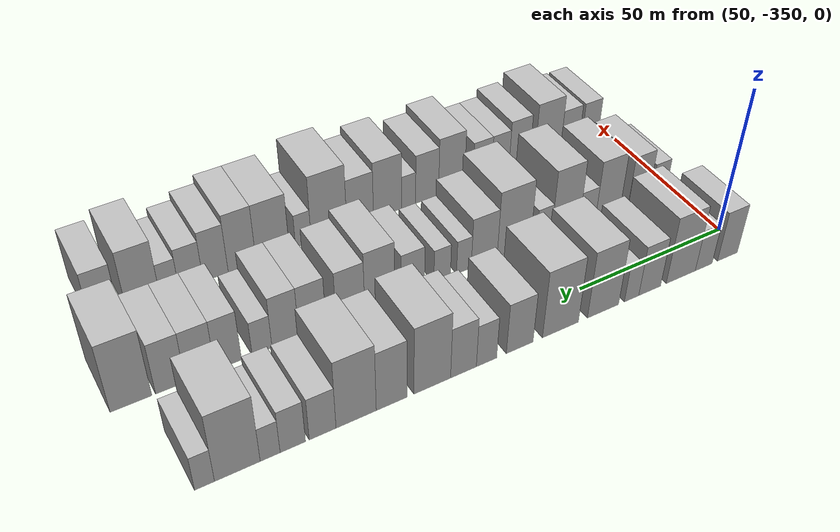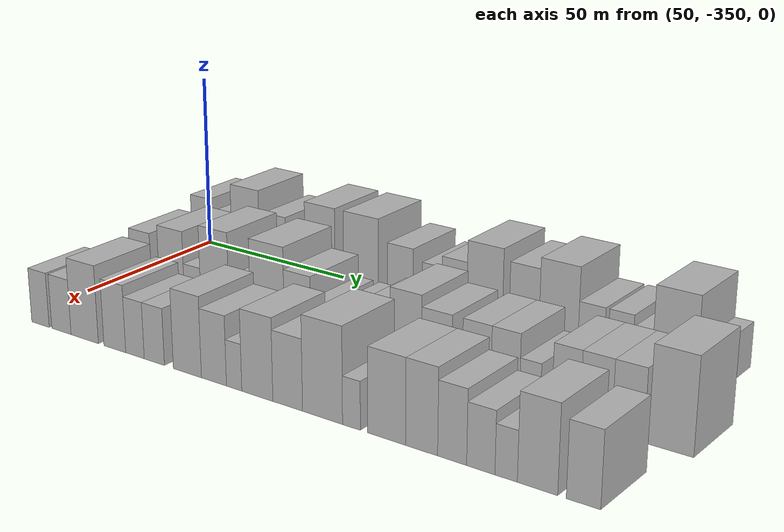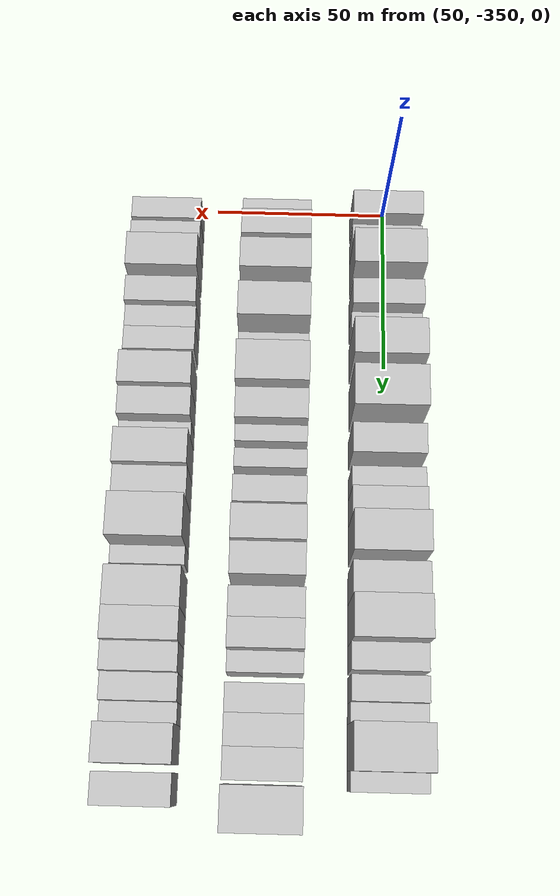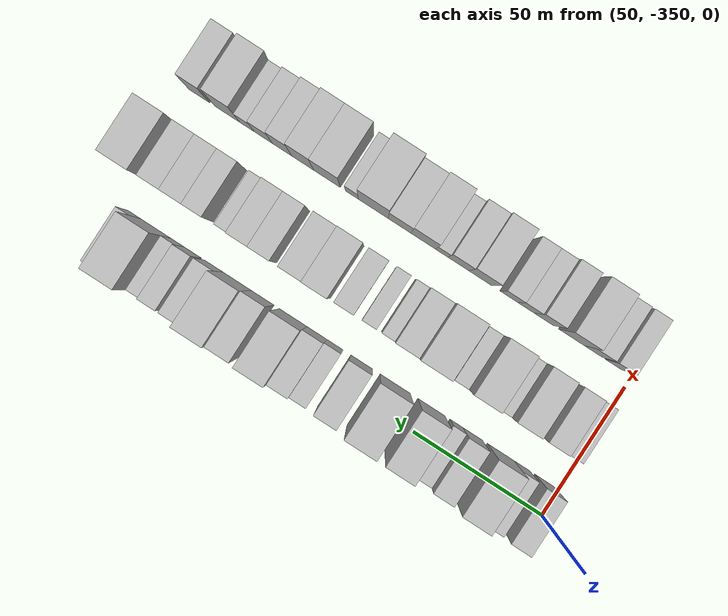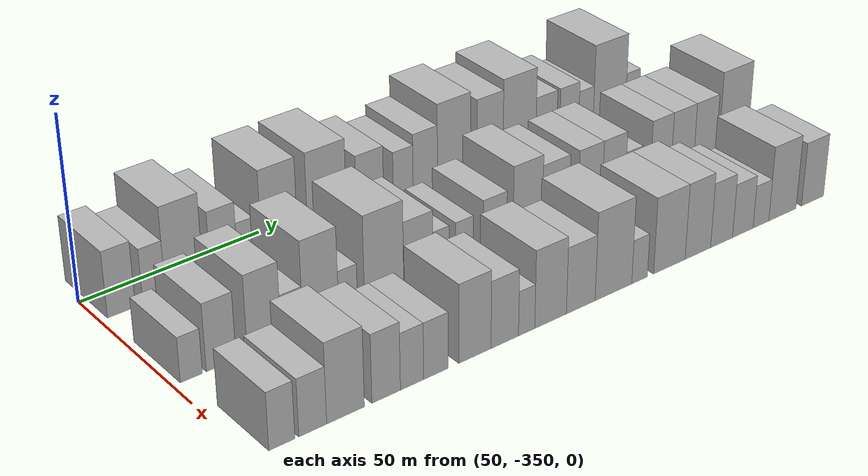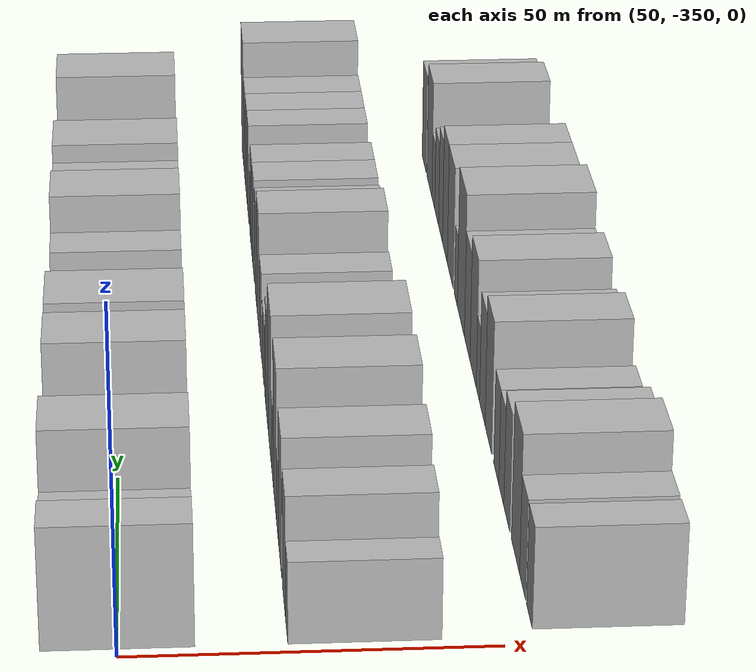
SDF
<sdf version="1.6">
 <world name="default">
  <model name="building_1">
   <static>1</static>
   <pose>50.0000 -344.3174 0 0.000000 0.000000 0.000000</pose>
   <link name="link">
    <pose>0 0 9.00 0 0 0</pose>
    <collision name="collision"><geometry><box><size>20.0000 7.3652 18.0000</size></box></geometry></collision>
    <visual name="visual">
     <cast_shadows>0</cast_shadows>
     <geometry><box><size>20.0000 7.3652 18.0000</size></box></geometry>
     <material>
      <script>
       <uri>model://HANNAS_wall/materials/scripts</uri>
       <uri>model://HANNAS_wall/materials/textures</uri>
       <name>vrc/HANNAS_wall</name>
      </script>
     </material>
    </visual>
   </link>
  </model>
  <model name="building_2">
   <static>1</static>
   <pose>50.0000 -335.5791 0 0.000000 0.000000 0.000000</pose>
   <link name="link">
    <pose>0 0 7.50 0 0 0</pose>
    <collision name="collision"><geometry><box><size>20.0000 6.1115 15.0000</size></box></geometry></collision>
    <visual name="visual">
     <cast_shadows>0</cast_shadows>
     <geometry><box><size>20.0000 6.1115 15.0000</size></box></geometry>
     <material>
      <script>
       <uri>model://HANNAS_wall/materials/scripts</uri>
       <uri>model://HANNAS_wall/materials/textures</uri>
       <name>vrc/HANNAS_wall</name>
      </script>
     </material>
    </visual>
   </link>
  </model>
  <model name="building_3">
   <static>1</static>
   <pose>50.0000 -327.3274 0 0.000000 0.000000 0.000000</pose>
   <link name="link">
    <pose>0 0 12.00 0 0 0</pose>
    <collision name="collision"><geometry><box><size>20.0000 10.3918 24.0000</size></box></geometry></collision>
    <visual name="visual">
     <cast_shadows>0</cast_shadows>
     <geometry><box><size>20.0000 10.3918 24.0000</size></box></geometry>
     <material>
      <script>
       <uri>model://HANNAS_wall/materials/scripts</uri>
       <uri>model://HANNAS_wall/materials/textures</uri>
       <name>vrc/HANNAS_wall</name>
      </script>
     </material>
    </visual>
   </link>
  </model>
  <model name="building_4">
   <static>1</static>
   <pose>50.0000 -316.3229 0 0.000000 0.000000 0.000000</pose>
   <link name="link">
    <pose>0 0 9.00 0 0 0</pose>
    <collision name="collision"><geometry><box><size>20.0000 7.6172 18.0000</size></box></geometry></collision>
    <visual name="visual">
     <cast_shadows>0</cast_shadows>
     <geometry><box><size>20.0000 7.6172 18.0000</size></box></geometry>
     <material>
      <script>
       <uri>model://HANNAS_wall/materials/scripts</uri>
       <uri>model://HANNAS_wall/materials/textures</uri>
       <name>vrc/HANNAS_wall</name>
      </script>
     </material>
    </visual>
   </link>
  </model>
  <model name="building_5">
   <static>1</static>
   <pose>50.0000 -310.0552 0 0.000000 0.000000 0.000000</pose>
   <link name="link">
    <pose>0 0 6.00 0 0 0</pose>
    <collision name="collision"><geometry><box><size>20.0000 4.9181 12.0000</size></box></geometry></collision>
    <visual name="visual">
     <cast_shadows>0</cast_shadows>
     <geometry><box><size>20.0000 4.9181 12.0000</size></box></geometry>
     <material>
      <script>
       <uri>model://HANNAS_wall/materials/scripts</uri>
       <uri>model://HANNAS_wall/materials/textures</uri>
       <name>vrc/HANNAS_wall</name>
      </script>
     </material>
    </visual>
   </link>
  </model>
  <model name="building_6">
   <static>1</static>
   <pose>50.0000 -300.3728 0 0.000000 0.000000 0.000000</pose>
   <link name="link">
    <pose>0 0 12.00 0 0 0</pose>
    <collision name="collision"><geometry><box><size>20.0000 10.4468 24.0000</size></box></geometry></collision>
    <visual name="visual">
     <cast_shadows>0</cast_shadows>
     <geometry><box><size>20.0000 10.4468 24.0000</size></box></geometry>
     <material>
      <script>
       <uri>model://HANNAS_wall/materials/scripts</uri>
       <uri>model://HANNAS_wall/materials/textures</uri>
       <name>vrc/HANNAS_wall</name>
      </script>
     </material>
    </visual>
   </link>
  </model>
  <model name="building_7">
   <static>1</static>
   <pose>50.0000 -286.3147 0 0.000000 0.000000 0.000000</pose>
   <link name="link">
    <pose>0 0 12.00 0 0 0</pose>
    <collision name="collision"><geometry><box><size>20.0000 11.6693 24.0000</size></box></geometry></collision>
    <visual name="visual">
     <cast_shadows>0</cast_shadows>
     <geometry><box><size>20.0000 11.6693 24.0000</size></box></geometry>
     <material>
      <script>
       <uri>model://HANNAS_wall/materials/scripts</uri>
       <uri>model://HANNAS_wall/materials/textures</uri>
       <name>vrc/HANNAS_wall</name>
      </script>
     </material>
    </visual>
   </link>
  </model>
  <model name="building_8">
   <static>1</static>
   <pose>50.0000 -273.2811 0 0.000000 0.000000 0.000000</pose>
   <link name="link">
    <pose>0 0 9.00 0 0 0</pose>
    <collision name="collision"><geometry><box><size>20.0000 8.3979 18.0000</size></box></geometry></collision>
    <visual name="visual">
     <cast_shadows>0</cast_shadows>
     <geometry><box><size>20.0000 8.3979 18.0000</size></box></geometry>
     <material>
      <script>
       <uri>model://HANNAS_wall/materials/scripts</uri>
       <uri>model://HANNAS_wall/materials/textures</uri>
       <name>vrc/HANNAS_wall</name>
      </script>
     </material>
    </visual>
   </link>
  </model>
  <model name="building_9">
   <static>1</static>
   <pose>50.0000 -262.9646 0 0.000000 0.000000 0.000000</pose>
   <link name="link">
    <pose>0 0 7.50 0 0 0</pose>
    <collision name="collision"><geometry><box><size>20.0000 6.2351 15.0000</size></box></geometry></collision>
    <visual name="visual">
     <cast_shadows>0</cast_shadows>
     <geometry><box><size>20.0000 6.2351 15.0000</size></box></geometry>
     <material>
      <script>
       <uri>model://HANNAS_wall/materials/scripts</uri>
       <uri>model://HANNAS_wall/materials/textures</uri>
       <name>vrc/HANNAS_wall</name>
      </script>
     </material>
    </visual>
   </link>
  </model>
  <model name="building_10">
   <static>1</static>
   <pose>50.0000 -255.9643 0 0.000000 0.000000 0.000000</pose>
   <link name="link">
    <pose>0 0 9.00 0 0 0</pose>
    <collision name="collision"><geometry><box><size>20.0000 7.7656 18.0000</size></box></geometry></collision>
    <visual name="visual">
     <cast_shadows>0</cast_shadows>
     <geometry><box><size>20.0000 7.7656 18.0000</size></box></geometry>
     <material>
      <script>
       <uri>model://HANNAS_wall/materials/scripts</uri>
       <uri>model://HANNAS_wall/materials/textures</uri>
       <name>vrc/HANNAS_wall</name>
      </script>
     </material>
    </visual>
   </link>
  </model>
  <model name="building_11">
   <static>1</static>
   <pose>50.0000 -246.6785 0 0.000000 0.000000 0.000000</pose>
   <link name="link">
    <pose>0 0 12.00 0 0 0</pose>
    <collision name="collision"><geometry><box><size>20.0000 10.8059 24.0000</size></box></geometry></collision>
    <visual name="visual">
     <cast_shadows>0</cast_shadows>
     <geometry><box><size>20.0000 10.8059 24.0000</size></box></geometry>
     <material>
      <script>
       <uri>model://HANNAS_wall/materials/scripts</uri>
       <uri>model://HANNAS_wall/materials/textures</uri>
       <name>vrc/HANNAS_wall</name>
      </script>
     </material>
    </visual>
   </link>
  </model>
  <model name="building_12">
   <static>1</static>
   <pose>50.0000 -234.8860 0 0.000000 0.000000 0.000000</pose>
   <link name="link">
    <pose>0 0 10.50 0 0 0</pose>
    <collision name="collision"><geometry><box><size>20.0000 8.7792 21.0000</size></box></geometry></collision>
    <visual name="visual">
     <cast_shadows>0</cast_shadows>
     <geometry><box><size>20.0000 8.7792 21.0000</size></box></geometry>
     <material>
      <script>
       <uri>model://HANNAS_wall/materials/scripts</uri>
       <uri>model://HANNAS_wall/materials/textures</uri>
       <name>vrc/HANNAS_wall</name>
      </script>
     </material>
    </visual>
   </link>
  </model>
  <model name="building_13">
   <static>1</static>
   <pose>50.0000 -224.8944 0 0.000000 0.000000 0.000000</pose>
   <link name="link">
    <pose>0 0 12.00 0 0 0</pose>
    <collision name="collision"><geometry><box><size>20.0000 11.2038 24.0000</size></box></geometry></collision>
    <visual name="visual">
     <cast_shadows>0</cast_shadows>
     <geometry><box><size>20.0000 11.2038 24.0000</size></box></geometry>
     <material>
      <script>
       <uri>model://HANNAS_wall/materials/scripts</uri>
       <uri>model://HANNAS_wall/materials/textures</uri>
       <name>vrc/HANNAS_wall</name>
      </script>
     </material>
    </visual>
   </link>
  </model>
  <model name="building_14">
   <static>1</static>
   <pose>50.0000 -215.6477 0 0.000000 0.000000 0.000000</pose>
   <link name="link">
    <pose>0 0 7.50 0 0 0</pose>
    <collision name="collision"><geometry><box><size>20.0000 7.2896 15.0000</size></box></geometry></collision>
    <visual name="visual">
     <cast_shadows>0</cast_shadows>
     <geometry><box><size>20.0000 7.2896 15.0000</size></box></geometry>
     <material>
      <script>
       <uri>model://HANNAS_wall/materials/scripts</uri>
       <uri>model://HANNAS_wall/materials/textures</uri>
       <name>vrc/HANNAS_wall</name>
      </script>
     </material>
    </visual>
   </link>
  </model>
  <model name="building_15">
   <static>1</static>
   <pose>50.0000 -207.6275 0 0.000000 0.000000 0.000000</pose>
   <link name="link">
    <pose>0 0 7.50 0 0 0</pose>
    <collision name="collision"><geometry><box><size>20.0000 6.7509 15.0000</size></box></geometry></collision>
    <visual name="visual">
     <cast_shadows>0</cast_shadows>
     <geometry><box><size>20.0000 6.7509 15.0000</size></box></geometry>
     <material>
      <script>
       <uri>model://HANNAS_wall/materials/scripts</uri>
       <uri>model://HANNAS_wall/materials/textures</uri>
       <name>vrc/HANNAS_wall</name>
      </script>
     </material>
    </visual>
   </link>
  </model>
  <model name="building_16">
   <static>1</static>
   <pose>50.0000 -201.6469 0 0.000000 0.000000 0.000000</pose>
   <link name="link">
    <pose>0 0 6.00 0 0 0</pose>
    <collision name="collision"><geometry><box><size>20.0000 5.2103 12.0000</size></box></geometry></collision>
    <visual name="visual">
     <cast_shadows>0</cast_shadows>
     <geometry><box><size>20.0000 5.2103 12.0000</size></box></geometry>
     <material>
      <script>
       <uri>model://HANNAS_wall/materials/scripts</uri>
       <uri>model://HANNAS_wall/materials/textures</uri>
       <name>vrc/HANNAS_wall</name>
      </script>
     </material>
    </visual>
   </link>
  </model>
  <model name="building_17">
   <static>1</static>
   <pose>50.0000 -193.1836 0 0.000000 0.000000 0.000000</pose>
   <link name="link">
    <pose>0 0 12.00 0 0 0</pose>
    <collision name="collision"><geometry><box><size>20.0000 11.7162 24.0000</size></box></geometry></collision>
    <visual name="visual">
     <cast_shadows>0</cast_shadows>
     <geometry><box><size>20.0000 11.7162 24.0000</size></box></geometry>
     <material>
      <script>
       <uri>model://HANNAS_wall/materials/scripts</uri>
       <uri>model://HANNAS_wall/materials/textures</uri>
       <name>vrc/HANNAS_wall</name>
      </script>
     </material>
    </visual>
   </link>
  </model>
  <model name="building_18">
   <static>1</static>
   <pose>50.0000 -184.8197 0 0.000000 0.000000 0.000000</pose>
   <link name="link">
    <pose>0 0 6.00 0 0 0</pose>
    <collision name="collision"><geometry><box><size>20.0000 5.0117 12.0000</size></box></geometry></collision>
    <visual name="visual">
     <cast_shadows>0</cast_shadows>
     <geometry><box><size>20.0000 5.0117 12.0000</size></box></geometry>
     <material>
      <script>
       <uri>model://HANNAS_wall/materials/scripts</uri>
       <uri>model://HANNAS_wall/materials/textures</uri>
       <name>vrc/HANNAS_wall</name>
      </script>
     </material>
    </visual>
   </link>
  </model>
  <model name="building_78">
   <static>1</static>
   <pose>82.0000 -345.1561 0 0.000000 0.000000 0.000000</pose>
   <link name="link">
    <pose>0 0 6.00 0 0 0</pose>
    <collision name="collision"><geometry><box><size>20.0000 5.6878 12.0000</size></box></geometry></collision>
    <visual name="visual">
     <cast_shadows>0</cast_shadows>
     <geometry><box><size>20.0000 5.6878 12.0000</size></box></geometry>
     <material>
      <script>
       <uri>model://HANNAS_wall/materials/scripts</uri>
       <uri>model://HANNAS_wall/materials/textures</uri>
       <name>vrc/HANNAS_wall</name>
      </script>
     </material>
    </visual>
   </link>
  </model>
  <model name="building_79">
   <static>1</static>
   <pose>82.0000 -337.4276 0 0.000000 0.000000 0.000000</pose>
   <link name="link">
    <pose>0 0 9.00 0 0 0</pose>
    <collision name="collision"><geometry><box><size>20.0000 7.7693 18.0000</size></box></geometry></collision>
    <visual name="visual">
     <cast_shadows>0</cast_shadows>
     <geometry><box><size>20.0000 7.7693 18.0000</size></box></geometry>
     <material>
      <script>
       <uri>model://HANNAS_wall/materials/scripts</uri>
       <uri>model://HANNAS_wall/materials/textures</uri>
       <name>vrc/HANNAS_wall</name>
      </script>
     </material>
    </visual>
   </link>
  </model>
  <model name="building_80">
   <static>1</static>
   <pose>82.0000 -326.0018 0 0.000000 0.000000 0.000000</pose>
   <link name="link">
    <pose>0 0 10.50 0 0 0</pose>
    <collision name="collision"><geometry><box><size>20.0000 9.0823 21.0000</size></box></geometry></collision>
    <visual name="visual">
     <cast_shadows>0</cast_shadows>
     <geometry><box><size>20.0000 9.0823 21.0000</size></box></geometry>
     <material>
      <script>
       <uri>model://HANNAS_wall/materials/scripts</uri>
       <uri>model://HANNAS_wall/materials/textures</uri>
       <name>vrc/HANNAS_wall</name>
      </script>
     </material>
    </visual>
   </link>
  </model>
  <model name="building_81">
   <static>1</static>
   <pose>82.0000 -318.4719 0 0.000000 0.000000 0.000000</pose>
   <link name="link">
    <pose>0 0 6.00 0 0 0</pose>
    <collision name="collision"><geometry><box><size>20.0000 5.9774 12.0000</size></box></geometry></collision>
    <visual name="visual">
     <cast_shadows>0</cast_shadows>
     <geometry><box><size>20.0000 5.9774 12.0000</size></box></geometry>
     <material>
      <script>
       <uri>model://HANNAS_wall/materials/scripts</uri>
       <uri>model://HANNAS_wall/materials/textures</uri>
       <name>vrc/HANNAS_wall</name>
      </script>
     </material>
    </visual>
   </link>
  </model>
  <model name="building_82">
   <static>1</static>
   <pose>82.0000 -310.5038 0 0.000000 0.000000 0.000000</pose>
   <link name="link">
    <pose>0 0 12.00 0 0 0</pose>
    <collision name="collision"><geometry><box><size>20.0000 9.9589 24.0000</size></box></geometry></collision>
    <visual name="visual">
     <cast_shadows>0</cast_shadows>
     <geometry><box><size>20.0000 9.9589 24.0000</size></box></geometry>
     <material>
      <script>
       <uri>model://HANNAS_wall/materials/scripts</uri>
       <uri>model://HANNAS_wall/materials/textures</uri>
       <name>vrc/HANNAS_wall</name>
      </script>
     </material>
    </visual>
   </link>
  </model>
  <model name="building_83">
   <static>1</static>
   <pose>82.0000 -302.8503 0 0.000000 0.000000 0.000000</pose>
   <link name="link">
    <pose>0 0 6.00 0 0 0</pose>
    <collision name="collision"><geometry><box><size>20.0000 5.3480 12.0000</size></box></geometry></collision>
    <visual name="visual">
     <cast_shadows>0</cast_shadows>
     <geometry><box><size>20.0000 5.3480 12.0000</size></box></geometry>
     <material>
      <script>
       <uri>model://HANNAS_wall/materials/scripts</uri>
       <uri>model://HANNAS_wall/materials/textures</uri>
       <name>vrc/HANNAS_wall</name>
      </script>
     </material>
    </visual>
   </link>
  </model>
  <model name="building_84">
   <static>1</static>
   <pose>82.0000 -292.4878 0 0.000000 0.000000 0.000000</pose>
   <link name="link">
    <pose>0 0 12.00 0 0 0</pose>
    <collision name="collision"><geometry><box><size>20.0000 11.3769 24.0000</size></box></geometry></collision>
    <visual name="visual">
     <cast_shadows>0</cast_shadows>
     <geometry><box><size>20.0000 11.3769 24.0000</size></box></geometry>
     <material>
      <script>
       <uri>model://HANNAS_wall/materials/scripts</uri>
       <uri>model://HANNAS_wall/materials/textures</uri>
       <name>vrc/HANNAS_wall</name>
      </script>
     </material>
    </visual>
   </link>
  </model>
  <model name="building_85">
   <static>1</static>
   <pose>82.0000 -282.4565 0 0.000000 0.000000 0.000000</pose>
   <link name="link">
    <pose>0 0 9.00 0 0 0</pose>
    <collision name="collision"><geometry><box><size>20.0000 8.6857 18.0000</size></box></geometry></collision>
    <visual name="visual">
     <cast_shadows>0</cast_shadows>
     <geometry><box><size>20.0000 8.6857 18.0000</size></box></geometry>
     <material>
      <script>
       <uri>model://HANNAS_wall/materials/scripts</uri>
       <uri>model://HANNAS_wall/materials/textures</uri>
       <name>vrc/HANNAS_wall</name>
      </script>
     </material>
    </visual>
   </link>
  </model>
  <model name="building_86">
   <static>1</static>
   <pose>82.0000 -275.6900 0 0.000000 0.000000 0.000000</pose>
   <link name="link">
    <pose>0 0 6.00 0 0 0</pose>
    <collision name="collision"><geometry><box><size>20.0000 4.8474 12.0000</size></box></geometry></collision>
    <visual name="visual">
     <cast_shadows>0</cast_shadows>
     <geometry><box><size>20.0000 4.8474 12.0000</size></box></geometry>
     <material>
      <script>
       <uri>model://HANNAS_wall/materials/scripts</uri>
       <uri>model://HANNAS_wall/materials/textures</uri>
       <name>vrc/HANNAS_wall</name>
      </script>
     </material>
    </visual>
   </link>
  </model>
  <model name="building_87">
   <static>1</static>
   <pose>82.0000 -268.5677 0 0.000000 0.000000 0.000000</pose>
   <link name="link">
    <pose>0 0 6.00 0 0 0</pose>
    <collision name="collision"><geometry><box><size>20.0000 5.3970 12.0000</size></box></geometry></collision>
    <visual name="visual">
     <cast_shadows>0</cast_shadows>
     <geometry><box><size>20.0000 5.3970 12.0000</size></box></geometry>
     <material>
      <script>
       <uri>model://HANNAS_wall/materials/scripts</uri>
       <uri>model://HANNAS_wall/materials/textures</uri>
       <name>vrc/HANNAS_wall</name>
      </script>
     </material>
    </visual>
   </link>
  </model>
  <model name="building_88">
   <static>1</static>
   <pose>82.0000 -259.1674 0 0.000000 0.000000 0.000000</pose>
   <link name="link">
    <pose>0 0 7.50 0 0 0</pose>
    <collision name="collision"><geometry><box><size>20.0000 7.4036 15.0000</size></box></geometry></collision>
    <visual name="visual">
     <cast_shadows>0</cast_shadows>
     <geometry><box><size>20.0000 7.4036 15.0000</size></box></geometry>
     <material>
      <script>
       <uri>model://HANNAS_wall/materials/scripts</uri>
       <uri>model://HANNAS_wall/materials/textures</uri>
       <name>vrc/HANNAS_wall</name>
      </script>
     </material>
    </visual>
   </link>
  </model>
  <model name="building_89">
   <static>1</static>
   <pose>82.0000 -248.8007 0 0.000000 0.000000 0.000000</pose>
   <link name="link">
    <pose>0 0 10.50 0 0 0</pose>
    <collision name="collision"><geometry><box><size>20.0000 9.3297 21.0000</size></box></geometry></collision>
    <visual name="visual">
     <cast_shadows>0</cast_shadows>
     <geometry><box><size>20.0000 9.3297 21.0000</size></box></geometry>
     <material>
      <script>
       <uri>model://HANNAS_wall/materials/scripts</uri>
       <uri>model://HANNAS_wall/materials/textures</uri>
       <name>vrc/HANNAS_wall</name>
      </script>
     </material>
    </visual>
   </link>
  </model>
  <model name="building_90">
   <static>1</static>
   <pose>82.0000 -239.7735 0 0.000000 0.000000 0.000000</pose>
   <link name="link">
    <pose>0 0 9.00 0 0 0</pose>
    <collision name="collision"><geometry><box><size>20.0000 8.7248 18.0000</size></box></geometry></collision>
    <visual name="visual">
     <cast_shadows>0</cast_shadows>
     <geometry><box><size>20.0000 8.7248 18.0000</size></box></geometry>
     <material>
      <script>
       <uri>model://HANNAS_wall/materials/scripts</uri>
       <uri>model://HANNAS_wall/materials/textures</uri>
       <name>vrc/HANNAS_wall</name>
      </script>
     </material>
    </visual>
   </link>
  </model>
  <model name="building_91">
   <static>1</static>
   <pose>82.0000 -228.4020 0 0.000000 0.000000 0.000000</pose>
   <link name="link">
    <pose>0 0 9.00 0 0 0</pose>
    <collision name="collision"><geometry><box><size>20.0000 8.0181 18.0000</size></box></geometry></collision>
    <visual name="visual">
     <cast_shadows>0</cast_shadows>
     <geometry><box><size>20.0000 8.0181 18.0000</size></box></geometry>
     <material>
      <script>
       <uri>model://HANNAS_wall/materials/scripts</uri>
       <uri>model://HANNAS_wall/materials/textures</uri>
       <name>vrc/HANNAS_wall</name>
      </script>
     </material>
    </visual>
   </link>
  </model>
  <model name="building_92">
   <static>1</static>
   <pose>82.0000 -220.4900 0 0.000000 0.000000 0.000000</pose>
   <link name="link">
    <pose>0 0 9.00 0 0 0</pose>
    <collision name="collision"><geometry><box><size>20.0000 7.8060 18.0000</size></box></geometry></collision>
    <visual name="visual">
     <cast_shadows>0</cast_shadows>
     <geometry><box><size>20.0000 7.8060 18.0000</size></box></geometry>
     <material>
      <script>
       <uri>model://HANNAS_wall/materials/scripts</uri>
       <uri>model://HANNAS_wall/materials/textures</uri>
       <name>vrc/HANNAS_wall</name>
      </script>
     </material>
    </visual>
   </link>
  </model>
  <model name="building_93">
   <static>1</static>
   <pose>82.0000 -213.7571 0 0.000000 0.000000 0.000000</pose>
   <link name="link">
    <pose>0 0 6.00 0 0 0</pose>
    <collision name="collision"><geometry><box><size>20.0000 5.6598 12.0000</size></box></geometry></collision>
    <visual name="visual">
     <cast_shadows>0</cast_shadows>
     <geometry><box><size>20.0000 5.6598 12.0000</size></box></geometry>
     <material>
      <script>
       <uri>model://HANNAS_wall/materials/scripts</uri>
       <uri>model://HANNAS_wall/materials/textures</uri>
       <name>vrc/HANNAS_wall</name>
      </script>
     </material>
    </visual>
   </link>
  </model>
  <model name="building_94">
   <static>1</static>
   <pose>82.0000 -204.2520 0 0.000000 0.000000 0.000000</pose>
   <link name="link">
    <pose>0 0 9.00 0 0 0</pose>
    <collision name="collision"><geometry><box><size>20.0000 7.3502 18.0000</size></box></geometry></collision>
    <visual name="visual">
     <cast_shadows>0</cast_shadows>
     <geometry><box><size>20.0000 7.3502 18.0000</size></box></geometry>
     <material>
      <script>
       <uri>model://HANNAS_wall/materials/scripts</uri>
       <uri>model://HANNAS_wall/materials/textures</uri>
       <name>vrc/HANNAS_wall</name>
      </script>
     </material>
    </visual>
   </link>
  </model>
  <model name="building_95">
   <static>1</static>
   <pose>82.0000 -196.5220 0 0.000000 0.000000 0.000000</pose>
   <link name="link">
    <pose>0 0 9.00 0 0 0</pose>
    <collision name="collision"><geometry><box><size>20.0000 8.1099 18.0000</size></box></geometry></collision>
    <visual name="visual">
     <cast_shadows>0</cast_shadows>
     <geometry><box><size>20.0000 8.1099 18.0000</size></box></geometry>
     <material>
      <script>
       <uri>model://HANNAS_wall/materials/scripts</uri>
       <uri>model://HANNAS_wall/materials/textures</uri>
       <name>vrc/HANNAS_wall</name>
      </script>
     </material>
    </visual>
   </link>
  </model>
  <model name="building_96">
   <static>1</static>
   <pose>82.0000 -188.4568 0 0.000000 0.000000 0.000000</pose>
   <link name="link">
    <pose>0 0 9.00 0 0 0</pose>
    <collision name="collision"><geometry><box><size>20.0000 8.0205 18.0000</size></box></geometry></collision>
    <visual name="visual">
     <cast_shadows>0</cast_shadows>
     <geometry><box><size>20.0000 8.0205 18.0000</size></box></geometry>
     <material>
      <script>
       <uri>model://HANNAS_wall/materials/scripts</uri>
       <uri>model://HANNAS_wall/materials/textures</uri>
       <name>vrc/HANNAS_wall</name>
      </script>
     </material>
    </visual>
   </link>
  </model>
  <model name="building_97">
   <static>1</static>
   <pose>82.0000 -177.9880 0 0.000000 0.000000 0.000000</pose>
   <link name="link">
    <pose>0 0 12.00 0 0 0</pose>
    <collision name="collision"><geometry><box><size>20.0000 10.9173 24.0000</size></box></geometry></collision>
    <visual name="visual">
     <cast_shadows>0</cast_shadows>
     <geometry><box><size>20.0000 10.9173 24.0000</size></box></geometry>
     <material>
      <script>
       <uri>model://HANNAS_wall/materials/scripts</uri>
       <uri>model://HANNAS_wall/materials/textures</uri>
       <name>vrc/HANNAS_wall</name>
      </script>
     </material>
    </visual>
   </link>
  </model>
  <model name="building_154">
   <static>1</static>
   <pose>114.0000 -342.7129 0 0.000000 0.000000 0.000000</pose>
   <link name="link">
    <pose>0 0 7.50 0 0 0</pose>
    <collision name="collision"><geometry><box><size>20.0000 6.5742 15.0000</size></box></geometry></collision>
    <visual name="visual">
     <cast_shadows>0</cast_shadows>
     <geometry><box><size>20.0000 6.5742 15.0000</size></box></geometry>
     <material>
      <script>
       <uri>model://HANNAS_wall/materials/scripts</uri>
       <uri>model://HANNAS_wall/materials/textures</uri>
       <name>vrc/HANNAS_wall</name>
      </script>
     </material>
    </visual>
   </link>
  </model>
  <model name="building_155">
   <static>1</static>
   <pose>114.0000 -334.8528 0 0.000000 0.000000 0.000000</pose>
   <link name="link">
    <pose>0 0 7.50 0 0 0</pose>
    <collision name="collision"><geometry><box><size>20.0000 7.1461 15.0000</size></box></geometry></collision>
    <visual name="visual">
     <cast_shadows>0</cast_shadows>
     <geometry><box><size>20.0000 7.1461 15.0000</size></box></geometry>
     <material>
      <script>
       <uri>model://HANNAS_wall/materials/scripts</uri>
       <uri>model://HANNAS_wall/materials/textures</uri>
       <name>vrc/HANNAS_wall</name>
      </script>
     </material>
    </visual>
   </link>
  </model>
  <model name="building_156">
   <static>1</static>
   <pose>114.0000 -326.3245 0 0.000000 0.000000 0.000000</pose>
   <link name="link">
    <pose>0 0 10.50 0 0 0</pose>
    <collision name="collision"><geometry><box><size>20.0000 9.9104 21.0000</size></box></geometry></collision>
    <visual name="visual">
     <cast_shadows>0</cast_shadows>
     <geometry><box><size>20.0000 9.9104 21.0000</size></box></geometry>
     <material>
      <script>
       <uri>model://HANNAS_wall/materials/scripts</uri>
       <uri>model://HANNAS_wall/materials/textures</uri>
       <name>vrc/HANNAS_wall</name>
      </script>
     </material>
    </visual>
   </link>
  </model>
  <model name="building_157">
   <static>1</static>
   <pose>114.0000 -315.5377 0 0.000000 0.000000 0.000000</pose>
   <link name="link">
    <pose>0 0 9.00 0 0 0</pose>
    <collision name="collision"><geometry><box><size>20.0000 7.6631 18.0000</size></box></geometry></collision>
    <visual name="visual">
     <cast_shadows>0</cast_shadows>
     <geometry><box><size>20.0000 7.6631 18.0000</size></box></geometry>
     <material>
      <script>
       <uri>model://HANNAS_wall/materials/scripts</uri>
       <uri>model://HANNAS_wall/materials/textures</uri>
       <name>vrc/HANNAS_wall</name>
      </script>
     </material>
    </visual>
   </link>
  </model>
  <model name="building_158">
   <static>1</static>
   <pose>114.0000 -308.5116 0 0.000000 0.000000 0.000000</pose>
   <link name="link">
    <pose>0 0 7.50 0 0 0</pose>
    <collision name="collision"><geometry><box><size>20.0000 6.3891 15.0000</size></box></geometry></collision>
    <visual name="visual">
     <cast_shadows>0</cast_shadows>
     <geometry><box><size>20.0000 6.3891 15.0000</size></box></geometry>
     <material>
      <script>
       <uri>model://HANNAS_wall/materials/scripts</uri>
       <uri>model://HANNAS_wall/materials/textures</uri>
       <name>vrc/HANNAS_wall</name>
      </script>
     </material>
    </visual>
   </link>
  </model>
  <model name="building_159">
   <static>1</static>
   <pose>114.0000 -301.9011 0 0.000000 0.000000 0.000000</pose>
   <link name="link">
    <pose>0 0 7.50 0 0 0</pose>
    <collision name="collision"><geometry><box><size>20.0000 6.8321 15.0000</size></box></geometry></collision>
    <visual name="visual">
     <cast_shadows>0</cast_shadows>
     <geometry><box><size>20.0000 6.8321 15.0000</size></box></geometry>
     <material>
      <script>
       <uri>model://HANNAS_wall/materials/scripts</uri>
       <uri>model://HANNAS_wall/materials/textures</uri>
       <name>vrc/HANNAS_wall</name>
      </script>
     </material>
    </visual>
   </link>
  </model>
  <model name="building_160">
   <static>1</static>
   <pose>114.0000 -290.8885 0 0.000000 0.000000 0.000000</pose>
   <link name="link">
    <pose>0 0 10.50 0 0 0</pose>
    <collision name="collision"><geometry><box><size>20.0000 9.1930 21.0000</size></box></geometry></collision>
    <visual name="visual">
     <cast_shadows>0</cast_shadows>
     <geometry><box><size>20.0000 9.1930 21.0000</size></box></geometry>
     <material>
      <script>
       <uri>model://HANNAS_wall/materials/scripts</uri>
       <uri>model://HANNAS_wall/materials/textures</uri>
       <name>vrc/HANNAS_wall</name>
      </script>
     </material>
    </visual>
   </link>
  </model>
  <model name="building_161">
   <static>1</static>
   <pose>114.0000 -282.2845 0 0.000000 0.000000 0.000000</pose>
   <link name="link">
    <pose>0 0 9.00 0 0 0</pose>
    <collision name="collision"><geometry><box><size>20.0000 8.0151 18.0000</size></box></geometry></collision>
    <visual name="visual">
     <cast_shadows>0</cast_shadows>
     <geometry><box><size>20.0000 8.0151 18.0000</size></box></geometry>
     <material>
      <script>
       <uri>model://HANNAS_wall/materials/scripts</uri>
       <uri>model://HANNAS_wall/materials/textures</uri>
       <name>vrc/HANNAS_wall</name>
      </script>
     </material>
    </visual>
   </link>
  </model>
  <model name="building_162">
   <static>1</static>
   <pose>114.0000 -275.8719 0 0.000000 0.000000 0.000000</pose>
   <link name="link">
    <pose>0 0 6.00 0 0 0</pose>
    <collision name="collision"><geometry><box><size>20.0000 4.8101 12.0000</size></box></geometry></collision>
    <visual name="visual">
     <cast_shadows>0</cast_shadows>
     <geometry><box><size>20.0000 4.8101 12.0000</size></box></geometry>
     <material>
      <script>
       <uri>model://HANNAS_wall/materials/scripts</uri>
       <uri>model://HANNAS_wall/materials/textures</uri>
       <name>vrc/HANNAS_wall</name>
      </script>
     </material>
    </visual>
   </link>
  </model>
  <model name="building_163">
   <static>1</static>
   <pose>114.0000 -268.7032 0 0.000000 0.000000 0.000000</pose>
   <link name="link">
    <pose>0 0 10.50 0 0 0</pose>
    <collision name="collision"><geometry><box><size>20.0000 9.5273 21.0000</size></box></geometry></collision>
    <visual name="visual">
     <cast_shadows>0</cast_shadows>
     <geometry><box><size>20.0000 9.5273 21.0000</size></box></geometry>
     <material>
      <script>
       <uri>model://HANNAS_wall/materials/scripts</uri>
       <uri>model://HANNAS_wall/materials/textures</uri>
       <name>vrc/HANNAS_wall</name>
      </script>
     </material>
    </visual>
   </link>
  </model>
  <model name="building_164">
   <static>1</static>
   <pose>114.0000 -259.5063 0 0.000000 0.000000 0.000000</pose>
   <link name="link">
    <pose>0 0 9.00 0 0 0</pose>
    <collision name="collision"><geometry><box><size>20.0000 8.8665 18.0000</size></box></geometry></collision>
    <visual name="visual">
     <cast_shadows>0</cast_shadows>
     <geometry><box><size>20.0000 8.8665 18.0000</size></box></geometry>
     <material>
      <script>
       <uri>model://HANNAS_wall/materials/scripts</uri>
       <uri>model://HANNAS_wall/materials/textures</uri>
       <name>vrc/HANNAS_wall</name>
      </script>
     </material>
    </visual>
   </link>
  </model>
  <model name="building_165">
   <static>1</static>
   <pose>114.0000 -249.2916 0 0.000000 0.000000 0.000000</pose>
   <link name="link">
    <pose>0 0 12.00 0 0 0</pose>
    <collision name="collision"><geometry><box><size>20.0000 11.5630 24.0000</size></box></geometry></collision>
    <visual name="visual">
     <cast_shadows>0</cast_shadows>
     <geometry><box><size>20.0000 11.5630 24.0000</size></box></geometry>
     <material>
      <script>
       <uri>model://HANNAS_wall/materials/scripts</uri>
       <uri>model://HANNAS_wall/materials/textures</uri>
       <name>vrc/HANNAS_wall</name>
      </script>
     </material>
    </visual>
   </link>
  </model>
  <model name="building_166">
   <static>1</static>
   <pose>114.0000 -241.0012 0 0.000000 0.000000 0.000000</pose>
   <link name="link">
    <pose>0 0 6.00 0 0 0</pose>
    <collision name="collision"><geometry><box><size>20.0000 5.0177 12.0000</size></box></geometry></collision>
    <visual name="visual">
     <cast_shadows>0</cast_shadows>
     <geometry><box><size>20.0000 5.0177 12.0000</size></box></geometry>
     <material>
      <script>
       <uri>model://HANNAS_wall/materials/scripts</uri>
       <uri>model://HANNAS_wall/materials/textures</uri>
       <name>vrc/HANNAS_wall</name>
      </script>
     </material>
    </visual>
   </link>
  </model>
  <model name="building_167">
   <static>1</static>
   <pose>114.0000 -231.3079 0 0.000000 0.000000 0.000000</pose>
   <link name="link">
    <pose>0 0 10.50 0 0 0</pose>
    <collision name="collision"><geometry><box><size>20.0000 10.3689 21.0000</size></box></geometry></collision>
    <visual name="visual">
     <cast_shadows>0</cast_shadows>
     <geometry><box><size>20.0000 10.3689 21.0000</size></box></geometry>
     <material>
      <script>
       <uri>model://HANNAS_wall/materials/scripts</uri>
       <uri>model://HANNAS_wall/materials/textures</uri>
       <name>vrc/HANNAS_wall</name>
      </script>
     </material>
    </visual>
   </link>
  </model>
  <model name="building_168">
   <static>1</static>
   <pose>114.0000 -221.8596 0 0.000000 0.000000 0.000000</pose>
   <link name="link">
    <pose>0 0 10.50 0 0 0</pose>
    <collision name="collision"><geometry><box><size>20.0000 8.5277 21.0000</size></box></geometry></collision>
    <visual name="visual">
     <cast_shadows>0</cast_shadows>
     <geometry><box><size>20.0000 8.5277 21.0000</size></box></geometry>
     <material>
      <script>
       <uri>model://HANNAS_wall/materials/scripts</uri>
       <uri>model://HANNAS_wall/materials/textures</uri>
       <name>vrc/HANNAS_wall</name>
      </script>
     </material>
    </visual>
   </link>
  </model>
  <model name="building_169">
   <static>1</static>
   <pose>114.0000 -213.8521 0 0.000000 0.000000 0.000000</pose>
   <link name="link">
    <pose>0 0 9.00 0 0 0</pose>
    <collision name="collision"><geometry><box><size>20.0000 7.4873 18.0000</size></box></geometry></collision>
    <visual name="visual">
     <cast_shadows>0</cast_shadows>
     <geometry><box><size>20.0000 7.4873 18.0000</size></box></geometry>
     <material>
      <script>
       <uri>model://HANNAS_wall/materials/scripts</uri>
       <uri>model://HANNAS_wall/materials/textures</uri>
       <name>vrc/HANNAS_wall</name>
      </script>
     </material>
    </visual>
   </link>
  </model>
  <model name="building_170">
   <static>1</static>
   <pose>114.0000 -206.5435 0 0.000000 0.000000 0.000000</pose>
   <link name="link">
    <pose>0 0 7.50 0 0 0</pose>
    <collision name="collision"><geometry><box><size>20.0000 7.1299 15.0000</size></box></geometry></collision>
    <visual name="visual">
     <cast_shadows>0</cast_shadows>
     <geometry><box><size>20.0000 7.1299 15.0000</size></box></geometry>
     <material>
      <script>
       <uri>model://HANNAS_wall/materials/scripts</uri>
       <uri>model://HANNAS_wall/materials/textures</uri>
       <name>vrc/HANNAS_wall</name>
      </script>
     </material>
    </visual>
   </link>
  </model>
  <model name="building_171">
   <static>1</static>
   <pose>114.0000 -200.2155 0 0.000000 0.000000 0.000000</pose>
   <link name="link">
    <pose>0 0 6.00 0 0 0</pose>
    <collision name="collision"><geometry><box><size>20.0000 5.5261 12.0000</size></box></geometry></collision>
    <visual name="visual">
     <cast_shadows>0</cast_shadows>
     <geometry><box><size>20.0000 5.5261 12.0000</size></box></geometry>
     <material>
      <script>
       <uri>model://HANNAS_wall/materials/scripts</uri>
       <uri>model://HANNAS_wall/materials/textures</uri>
       <name>vrc/HANNAS_wall</name>
      </script>
     </material>
    </visual>
   </link>
  </model>
  <model name="building_172">
   <static>1</static>
   <pose>114.0000 -192.5930 0 0.000000 0.000000 0.000000</pose>
   <link name="link">
    <pose>0 0 10.50 0 0 0</pose>
    <collision name="collision"><geometry><box><size>20.0000 9.7190 21.0000</size></box></geometry></collision>
    <visual name="visual">
     <cast_shadows>0</cast_shadows>
     <geometry><box><size>20.0000 9.7190 21.0000</size></box></geometry>
     <material>
      <script>
       <uri>model://HANNAS_wall/materials/scripts</uri>
       <uri>model://HANNAS_wall/materials/textures</uri>
       <name>vrc/HANNAS_wall</name>
      </script>
     </material>
    </visual>
   </link>
  </model>
  <model name="building_173">
   <static>1</static>
   <pose>114.0000 -181.7309 0 0.000000 0.000000 0.000000</pose>
   <link name="link">
    <pose>0 0 9.00 0 0 0</pose>
    <collision name="collision"><geometry><box><size>20.0000 8.0053 18.0000</size></box></geometry></collision>
    <visual name="visual">
     <cast_shadows>0</cast_shadows>
     <geometry><box><size>20.0000 8.0053 18.0000</size></box></geometry>
     <material>
      <script>
       <uri>model://HANNAS_wall/materials/scripts</uri>
       <uri>model://HANNAS_wall/materials/textures</uri>
       <name>vrc/HANNAS_wall</name>
      </script>
     </material>
    </visual>
   </link>
  </model>
 </world>
</sdf>
